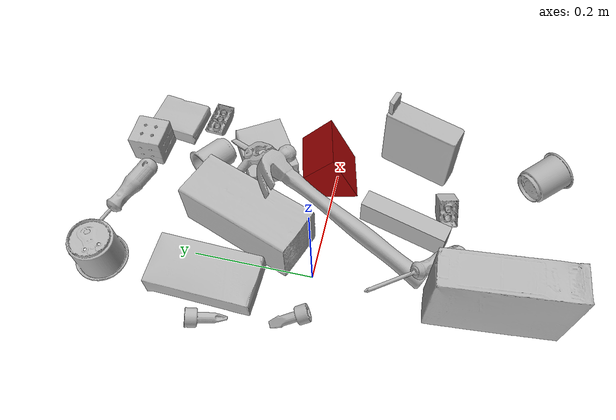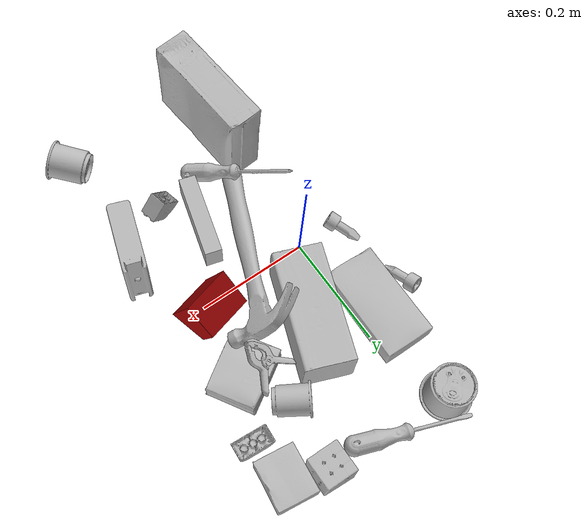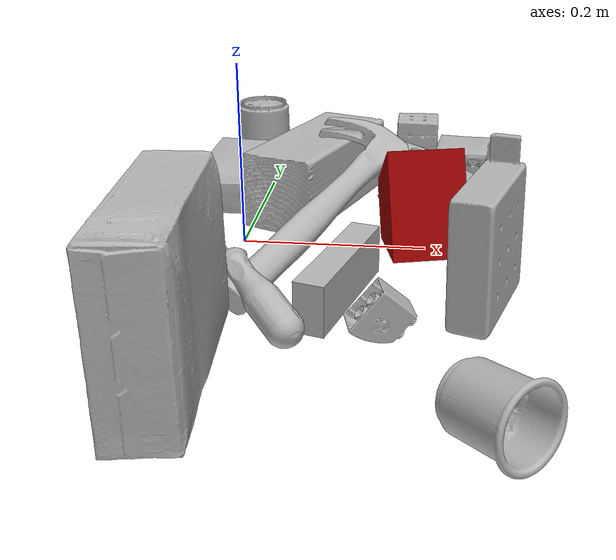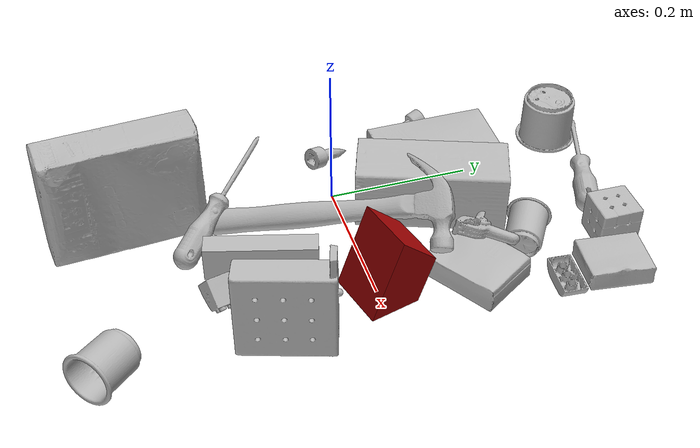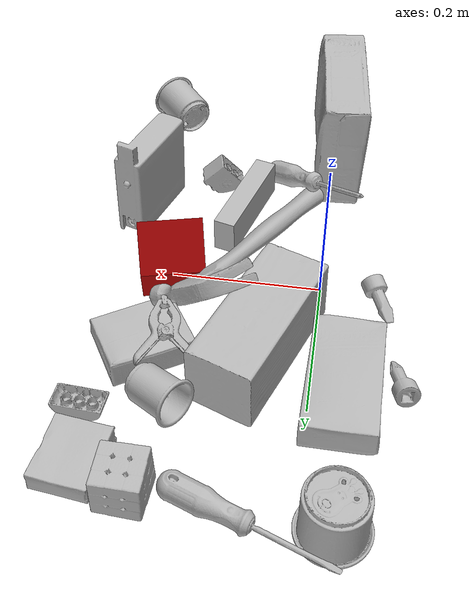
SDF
<sdf version="1.4">
  <world name="default">
    <light name="light1" type="point">
      <pose>0 0 1 0 0 0</pose>
      <diffuse>3 3 3 1</diffuse>
      <specular>3 3 3 1</specular>
    </light>
    <light name="light2" type="point">
      <pose>0 0.5 2 0 0 0</pose>
      <diffuse>1 1 1 1</diffuse>
      <specular>1 1 1 1</specular>
    </light>
    <light name="light3" type="point">
      <pose>0 0.5 2 0 0 0</pose>
      <diffuse>3 3 3 1</diffuse>
      <specular>3 3 3 1</specular>
    </light>
    <scene>
      <ambient>0.7 0.7 0.7</ambient>
    </scene>
    <model name="box21">
      <link name="link_box21">
        <collision name="default">
          <geometry>
            <mesh>
              <uri>model://cracker_box/collision_meshes/collision.obj</uri>
              <scale>1.0 1.0 1.0</scale>
            </mesh>
          </geometry>
          <surface>
            <friction>
              <ode>
                <mu>0.5</mu>
                <mu2>0.5</mu2>
              </ode>
            </friction>
          <contact>
        <ode>
            <max_vel>0</max_vel>
            <min_depth>0.0001</min_depth>
            <kp>1e8</kp>
        </ode>
    </contact></surface>
        </collision>
        <visual name="default">
          <geometry>
            <mesh>
              <uri>model://cracker_box/visual_meshes/visual.dae</uri>
              <scale>1.0 1.0 1.0</scale>
            </mesh>
          </geometry>
        </visual>
        <inertial>
          <mass>1.1849639415740967</mass>
          <pose>0.0009464144241064787 0.0002543424488976598 -0.0017029534792527556 -0.0003162077682631379 -0.011106487737543453 0.002546794536785776</pose>
          <inertia>
            <ixx>0.0030140192</ixx>
            <iyy>0.004976738</iyy>
            <izz>0.007102261</izz>
            <ixy>0</ixy>
            <ixz>0</ixz>
            <iyz>0</iyz>
          </inertia>
        </inertial>
      </link>
      <pose>-0.0013829253148287535 -0.28669631481170654 0.08175766468048096 1.5452335435537305 0.009040302598598558 1.6646765800386187</pose>
    </model>
    <model name="box22">
      <link name="link_box22">
        <collision name="default">
          <geometry>
            <mesh>
              <uri>model://rubiks_cube/collision_meshes/collision.obj</uri>
              <scale>1.0 1.0 1.0</scale>
            </mesh>
          </geometry>
          <surface>
            <friction>
              <ode>
                <mu>0.5</mu>
                <mu2>0.5</mu2>
              </ode>
            </friction>
          <contact>
        <ode>
            <max_vel>0</max_vel>
            <min_depth>0.0001</min_depth>
            <kp>1e8</kp>
        </ode>
    </contact></surface>
        </collision>
        <visual name="default">
          <geometry>
            <mesh>
              <uri>model://rubiks_cube/visual_meshes/visual.dae</uri>
              <scale>1.0 1.0 1.0</scale>
            </mesh>
          </geometry>
        </visual>
        <inertial>
          <mass>0.10796652734279633</mass>
          <pose>2.6721041649580002e-05 5.2569666877388954e-05 -7.264316082000732e-06 -0.054672548620525036 -0.09813983330627576 -0.03445544186372042</pose>
          <inertia>
            <ixx>5.965876e-05</ixx>
            <iyy>5.9380527e-05</iyy>
            <izz>6.0153117e-05</izz>
            <ixy>0</ixy>
            <ixz>0</ixz>
            <iyz>0</iyz>
          </inertia>
        </inertial>
      </link>
      <pose>0.18712276220321655 0.33904731273651123 0.028679000213742256 -1.700980226708567e-06 5.299135681385515e-07 1.5476109186768927</pose>
    </model>
    <model name="box23">
      <link name="link_box23">
        <collision name="default">
          <geometry>
            <mesh>
              <uri>model://sugar_box/collision_meshes/collision.obj</uri>
              <scale>1.0 1.0 1.0</scale>
            </mesh>
          </geometry>
          <surface>
            <friction>
              <ode>
                <mu>0.5</mu>
                <mu2>0.5</mu2>
              </ode>
            </friction>
          <contact>
        <ode>
            <max_vel>0</max_vel>
            <min_depth>0.0001</min_depth>
            <kp>1e8</kp>
        </ode>
    </contact></surface>
        </collision>
        <visual name="default">
          <geometry>
            <mesh>
              <uri>model://sugar_box/visual_meshes/visual.dae</uri>
              <scale>1.0 1.0 1.0</scale>
            </mesh>
          </geometry>
        </visual>
        <inertial>
          <mass>0.8519012928009033</mass>
          <pose>0.0010343727190047503 3.8491099985549226e-05 -0.0003636480832938105 -0.00040462606756407727 0.0010506635218583888 0.002615378789044619</pose>
          <inertia>
            <ixx>0.00070980185</ixx>
            <iyy>0.0022942254</iyy>
            <izz>0.0027464617</izz>
            <ixy>0</ixy>
            <ixz>0</ixz>
            <iyz>0</iyz>
          </inertia>
        </inertial>
      </link>
      <pose>-0.040252070873975754 0.16602133214473724 0.022798629477620125 0.000746623794562726 -0.023427431929300708 1.540475943780164</pose>
    </model>
    <model name="cup1">
      <link name="link_cup1">
        <collision name="default">
          <geometry>
            <mesh>
              <uri>model://b_cups/collision_meshes/collision.obj</uri>
              <scale>1.0 1.0 1.0</scale>
            </mesh>
          </geometry>
          <surface>
            <friction>
              <ode>
                <mu>0.5</mu>
                <mu2>0.5</mu2>
              </ode>
            </friction>
          <contact>
        <ode>
            <max_vel>0</max_vel>
            <min_depth>0.0001</min_depth>
            <kp>1e8</kp>
        </ode>
    </contact></surface>
        </collision>
        <visual name="default">
          <geometry>
            <mesh>
              <uri>model://b_cups/visual_meshes/visual.dae</uri>
              <scale>1.0 1.0 1.0</scale>
            </mesh>
          </geometry>
        </visual>
        <inertial>
          <mass>0.025879299268126488</mass>
          <pose>0.0005181999877095222 0.0018058597343042493 -0.0013381816679611802 0.11356295314662153 0.03872538879904025 -0.34569789869984097</pose>
          <inertia>
            <ixx>1.6939814e-05</ixx>
            <iyy>1.6618207e-05</iyy>
            <izz>1.4254532e-05</izz>
            <ixy>0</ixy>
            <ixz>0</ixz>
            <iyz>0</iyz>
          </inertia>
        </inertial>
      </link>
      <pose>0.1747145652770996 0.21789894998073578 0.027720125392079353 -1.4777128537298199 -0.09238007699395491 0.9950606389758273</pose>
    </model>
    <model name="cup2">
      <link name="link_cup2">
        <collision name="default">
          <geometry>
            <mesh>
              <uri>model://g_cups/collision_meshes/collision.obj</uri>
              <scale>1.0 1.0 1.0</scale>
            </mesh>
          </geometry>
          <surface>
            <friction>
              <ode>
                <mu>0.5</mu>
                <mu2>0.5</mu2>
              </ode>
            </friction>
          <contact>
        <ode>
            <max_vel>0</max_vel>
            <min_depth>0.0001</min_depth>
            <kp>1e8</kp>
        </ode>
    </contact></surface>
        </collision>
        <visual name="default">
          <geometry>
            <mesh>
              <uri>model://g_cups/visual_meshes/visual.dae</uri>
              <scale>1.0 1.0 1.0</scale>
            </mesh>
          </geometry>
        </visual>
        <inertial>
          <mass>0.06683293730020523</mass>
          <pose>-0.0007946278783492744 -4.206685844110325e-05 -0.002132937777787447 -0.21382591566164685 -0.31410327542238353 0.3112138520870617</pose>
          <inertia>
            <ixx>7.8009005e-05</ixx>
            <iyy>7.7743636e-05</iyy>
            <izz>8.080389e-05</izz>
            <ixy>0</ixy>
            <ixz>0</ixz>
            <iyz>0</iyz>
          </inertia>
        </inertial>
      </link>
      <pose>-0.0409293994307518 0.34891781210899353 0.03711601346731186 3.1415921687657717 1.6136544716177917e-09 2.35334756774974</pose>
    </model>
    <model name="box11">
      <link name="link_box11">
        <collision name="default">
          <geometry>
            <mesh>
              <uri>model://wood_block/collision_meshes/collision.obj</uri>
              <scale>1.0 1.0 1.0</scale>
            </mesh>
          </geometry>
          <surface>
            <friction>
              <ode>
                <mu>0.5</mu>
                <mu2>0.5</mu2>
              </ode>
            </friction>
          <contact>
        <ode>
            <max_vel>0</max_vel>
            <min_depth>0.0001</min_depth>
            <kp>1e8</kp>
        </ode>
    </contact></surface>
        </collision>
        <visual name="default">
          <geometry>
            <mesh>
              <uri>model://wood_block/visual_meshes/visual.dae</uri>
              <scale>1.0 1.0 1.0</scale>
            </mesh>
          </geometry>
        </visual>
        <inertial>
          <mass>0.9227498173713684</mass>
          <pose>-5.813315056002466e-06 -0.0005708094104193151 0.0002640858292579651 -0.05221074847543751 -0.005192695234575722 -0.00686137748598008</pose>
          <inertia>
            <ixx>0.001234779</ixx>
            <iyy>0.0039006667</iyy>
            <izz>0.0038860766</izz>
            <ixy>0</ixy>
            <ixz>0</ixz>
            <iyz>0</iyz>
          </inertia>
        </inertial>
      </link>
      <pose>0.06678242981433868 0.12258604913949966 0.045616813004016876 3.1413967631917767 -0.005996273059489422 -1.930140081088456</pose>
    </model>
    <model name="box12">
      <link name="link_box12">
        <collision name="default">
          <geometry>
            <mesh>
              <uri>model://pudding_box/collision_meshes/collision.obj</uri>
              <scale>1.0 1.0 1.0</scale>
            </mesh>
          </geometry>
          <surface>
            <friction>
              <ode>
                <mu>0.5</mu>
                <mu2>0.5</mu2>
              </ode>
            </friction>
          <contact>
        <ode>
            <max_vel>0</max_vel>
            <min_depth>0.0001</min_depth>
            <kp>1e8</kp>
        </ode>
    </contact></surface>
        </collision>
        <visual name="default">
          <geometry>
            <mesh>
              <uri>model://pudding_box/visual_meshes/visual.dae</uri>
              <scale>1.0 1.0 1.0</scale>
            </mesh>
          </geometry>
        </visual>
        <inertial>
          <mass>0.23326139152050018</mass>
          <pose>0.0004894821904599667 0.0008067885646596551 -0.0005188827635720372 0.0052131032034861725 -0.006603797335681708 0.02007982515858456</pose>
          <inertia>
            <ixx>0.00026369</ixx>
            <iyy>0.00017741251</iyy>
            <izz>0.00038940719</izz>
            <ixy>0</ixy>
            <ixz>0</ixz>
            <iyz>0</iyz>
          </inertia>
        </inertial>
      </link>
      <pose>0.21051816642284393 0.13356555998325348 0.018660737201571465 3.1339790339077176 -0.026963237295277644 2.1310259336591235</pose>
    </model>
    <model name="box13">
      <link name="link_box13">
        <collision name="default">
          <geometry>
            <mesh>
              <uri>model://gelatin_box/collision_meshes/collision.obj</uri>
              <scale>1.0 1.0 1.0</scale>
            </mesh>
          </geometry>
          <surface>
            <friction>
              <ode>
                <mu>0.5</mu>
                <mu2>0.5</mu2>
              </ode>
            </friction>
          <contact>
        <ode>
            <max_vel>0</max_vel>
            <min_depth>0.0001</min_depth>
            <kp>1e8</kp>
        </ode>
    </contact></surface>
        </collision>
        <visual name="default">
          <geometry>
            <mesh>
              <uri>model://gelatin_box/visual_meshes/visual.dae</uri>
              <scale>1.0 1.0 1.0</scale>
            </mesh>
          </geometry>
        </visual>
        <inertial>
          <mass>0.0997389405965805</mass>
          <pose>0.0004319618456065655 0.00011156871187267825 -0.0003640321083366871 -0.001050372080915675 -0.004755817759010177 0.0164405576084854</pose>
          <inertia>
            <ixx>7.040755e-05</ixx>
            <iyy>5.0291743e-05</iyy>
            <izz>0.000107175976</izz>
            <ixy>0</ixy>
            <ixz>0</ixz>
            <iyz>0</iyz>
          </inertia>
        </inertial>
      </link>
      <pose>0.25203511118888855 0.3102701008319855 0.015168312937021255 0.005597502294113328 -0.00730457825350332 -0.13241546451173203</pose>
    </model>
    <model name="box14">
      <link name="link_box14">
        <collision name="default">
          <geometry>
            <mesh>
              <uri>model://jenga/collision_meshes/collision.obj</uri>
              <scale>1.0 1.0 1.0</scale>
            </mesh>
          </geometry>
          <surface>
            <friction>
              <ode>
                <mu>0.5</mu>
                <mu2>0.5</mu2>
              </ode>
            </friction>
          <contact>
        <ode>
            <max_vel>0</max_vel>
            <min_depth>0.0001</min_depth>
            <kp>1e8</kp>
        </ode>
    </contact></surface>
        </collision>
        <visual name="default">
          <geometry>
            <mesh>
              <uri>model://jenga/visual_meshes/visual.dae</uri>
              <scale>1.0 1.0 1.0</scale>
            </mesh>
          </geometry>
        </visual>
        <inertial>
          <mass>0.23366476595401764</mass>
          <pose>-2.502855807051674e-07 -0.0001025000965455547 -4.092339804628864e-05 0.0 -7.34215461761844e-07 0.0</pose>
          <inertia>
            <ixx>6.466071e-05</ixx>
            <iyy>0.0004381392</iyy>
            <izz>0.00046775083</izz>
            <ixy>0</ixy>
            <ixz>0</ixz>
            <iyz>0</iyz>
          </inertia>
        </inertial>
      </link>
      <pose>0.11923666298389435 -0.13108938932418823 0.02470194734632969 1.5774972008124768 -1.0935362050226243e-07 1.29965976548554</pose>
    </model>
    <model name="cup15">
      <link name="link_cup15">
        <collision name="default">
          <geometry>
            <mesh>
              <uri>model://d_cups/collision_meshes/collision.obj</uri>
              <scale>1.0 1.0 1.0</scale>
            </mesh>
          </geometry>
          <surface>
            <friction>
              <ode>
                <mu>0.5</mu>
                <mu2>0.5</mu2>
              </ode>
            </friction>
          <contact>
        <ode>
            <max_vel>0</max_vel>
            <min_depth>0.0001</min_depth>
            <kp>1e8</kp>
        </ode>
    </contact></surface>
        </collision>
        <visual name="default">
          <geometry>
            <mesh>
              <uri>model://d_cups/visual_meshes/visual.dae</uri>
              <scale>1.0 1.0 1.0</scale>
            </mesh>
          </geometry>
        </visual>
        <inertial>
          <mass>0.05354860797524452</mass>
          <pose>0.000806806143373251 0.001911740517243743 -0.002266649389639497 0.240133395025133 -0.24708811164710584 0.5942101592185234</pose>
          <inertia>
            <ixx>4.4832785e-05</ixx>
            <iyy>4.470303e-05</iyy>
            <izz>4.0581297e-05</izz>
            <ixy>0</ixy>
            <ixz>0</ixz>
            <iyz>0</iyz>
          </inertia>
        </inertial>
      </link>
      <pose>0.2513510286808014 -0.3514857888221741 0.0323602519929409 1.3355218517900695 1.1371312919253567 0.5357211282239907</pose>
    </model>
    <model name="toy1">
      <link name="link_toy1">
        <collision name="default">
          <geometry>
            <mesh>
              <uri>model://d_toy_airplane/collision_meshes/collision.obj</uri>
              <scale>1.0 1.0 1.0</scale>
            </mesh>
          </geometry>
          <surface>
            <friction>
              <ode>
                <mu>0.5</mu>
                <mu2>0.5</mu2>
              </ode>
            </friction>
          <contact>
        <ode>
            <max_vel>0</max_vel>
            <min_depth>0.0001</min_depth>
            <kp>1e8</kp>
        </ode>
    </contact></surface>
        </collision>
        <visual name="default">
          <geometry>
            <mesh>
              <uri>model://d_toy_airplane/visual_meshes/visual.dae</uri>
              <scale>1.0 1.0 1.0</scale>
            </mesh>
          </geometry>
        </visual>
        <inertial>
          <mass>0.01055214088410139</mass>
          <pose>9.410294296685606e-05 -5.809328649775125e-05 -0.011728094890713692 0.00026701540047293157 0.004678982739479609 0.5194739606880012</pose>
          <inertia>
            <ixx>3.1633276e-06</ixx>
            <iyy>3.1657132e-06</iyy>
            <izz>9.55029e-07</izz>
            <ixy>0</ixy>
            <ixz>0</ixz>
            <iyz>0</iyz>
          </inertia>
        </inertial>
      </link>
      <pose>-0.10773111879825592 0.1451178342103958 0.011275384575128555 2.3272739860876825 1.24268339337223 1.0101296241658337</pose>
    </model>
    <model name="toy2">
      <link name="link_toy2">
        <collision name="default">
          <geometry>
            <mesh>
              <uri>model://d_lego_duplo/collision_meshes/collision.obj</uri>
              <scale>1.0 1.0 1.0</scale>
            </mesh>
          </geometry>
          <surface>
            <friction>
              <ode>
                <mu>0.5</mu>
                <mu2>0.5</mu2>
              </ode>
            </friction>
          <contact>
        <ode>
            <max_vel>0</max_vel>
            <min_depth>0.0001</min_depth>
            <kp>1e8</kp>
        </ode>
    </contact></surface>
        </collision>
        <visual name="default">
          <geometry>
            <mesh>
              <uri>model://d_lego_duplo/visual_meshes/visual.dae</uri>
              <scale>1.0 1.0 1.0</scale>
            </mesh>
          </geometry>
        </visual>
        <inertial>
          <mass>0.039816875010728836</mass>
          <pose>0.0028305640444159508 0.00016366131603717804 0.000858980929479003 0.08010950238605453 -0.3835521959243733 0.0010296761363168562</pose>
          <inertia>
            <ixx>7.70796e-06</ixx>
            <iyy>1.0939688e-05</iyy>
            <izz>1.0549791e-05</izz>
            <ixy>0</ixy>
            <ixz>0</ixz>
            <iyz>0</iyz>
          </inertia>
        </inertial>
      </link>
      <pose>0.16343200206756592 -0.19670163094997406 0.01791154034435749 -3.137547481107204 -0.854040218979172 0.23795269255992307</pose>
    </model>
    <model name="toy3">
      <link name="link_toy3">
        <collision name="default">
          <geometry>
            <mesh>
              <uri>model://nine_hole_peg_test/collision_meshes/collision.obj</uri>
              <scale>1.0 1.0 1.0</scale>
            </mesh>
          </geometry>
          <surface>
            <friction>
              <ode>
                <mu>0.5</mu>
                <mu2>0.5</mu2>
              </ode>
            </friction>
          <contact>
        <ode>
            <max_vel>0</max_vel>
            <min_depth>0.0001</min_depth>
            <kp>1e8</kp>
        </ode>
    </contact></surface>
        </collision>
        <visual name="default">
          <geometry>
            <mesh>
              <uri>model://nine_hole_peg_test/visual_meshes/visual.dae</uri>
              <scale>1.0 1.0 1.0</scale>
            </mesh>
          </geometry>
        </visual>
        <inertial>
          <mass>0.7048692107200623</mass>
          <pose>-0.0046173869632184505 -0.009647614322602749 2.6460689696250483e-05 -0.0014666794682547425 0.0007194190753660851 -0.6342416580414534</pose>
          <inertia>
            <ixx>0.0011021789</ixx>
            <iyy>0.0010290928</iyy>
            <izz>0.0019313421</izz>
            <ixy>0</ixy>
            <ixz>0</ixz>
            <iyz>0</iyz>
          </inertia>
        </inertial>
      </link>
      <pose>0.2575593590736389 -0.12823818624019623 0.07397211343050003 1.5550013024335216 -0.009795052344105035 1.2549976783058752</pose>
    </model>
    <model name="toy4">
      <link name="link_toy4">
        <collision name="default">
          <geometry>
            <mesh>
              <uri>model://a_lego_duplo/collision_meshes/collision.obj</uri>
              <scale>1.0 1.0 1.0</scale>
            </mesh>
          </geometry>
          <surface>
            <friction>
              <ode>
                <mu>0.5</mu>
                <mu2>0.5</mu2>
              </ode>
            </friction>
          <contact>
        <ode>
            <max_vel>0</max_vel>
            <min_depth>0.0001</min_depth>
            <kp>1e8</kp>
        </ode>
    </contact></surface>
        </collision>
        <visual name="default">
          <geometry>
            <mesh>
              <uri>model://a_lego_duplo/visual_meshes/visual.dae</uri>
              <scale>1.0 1.0 1.0</scale>
            </mesh>
          </geometry>
        </visual>
        <inertial>
          <mass>0.021006127819418907</mass>
          <pose>-0.00011337678006384522 0.00018517556600272655 0.0003692602913361043 -0.014116980161978756 -0.00012565077681184441 6.142327078429463e-05</pose>
          <inertia>
            <ixx>2.6931523e-06</ixx>
            <iyy>6.033251e-06</iyy>
            <izz>7.473524e-06</izz>
            <ixy>0</ixy>
            <ixz>0</ixz>
            <iyz>0</iyz>
          </inertia>
        </inertial>
      </link>
      <pose>0.2634427547454834 0.23746417462825775 0.012124794535338879 -3.141281913051534 -0.015583305963309431 3.0594552632407055</pose>
    </model>
    <model name="toy5">
      <link name="link_toy5">
        <collision name="default">
          <geometry>
            <mesh>
              <uri>model://e_toy_airplane/collision_meshes/collision.obj</uri>
              <scale>1.0 1.0 1.0</scale>
            </mesh>
          </geometry>
          <surface>
            <friction>
              <ode>
                <mu>0.5</mu>
                <mu2>0.5</mu2>
              </ode>
            </friction>
          <contact>
        <ode>
            <max_vel>0</max_vel>
            <min_depth>0.0001</min_depth>
            <kp>1e8</kp>
        </ode>
    </contact></surface>
        </collision>
        <visual name="default">
          <geometry>
            <mesh>
              <uri>model://e_toy_airplane/visual_meshes/visual.dae</uri>
              <scale>1.0 1.0 1.0</scale>
            </mesh>
          </geometry>
        </visual>
        <inertial>
          <mass>0.02451101876795292</mass>
          <pose>0.00011740468471543863 -2.248291639261879e-05 -0.011187203228473663 0.00551850103187323 0.009228285956806933 0.150416364683818</pose>
          <inertia>
            <ixx>7.481042e-06</ixx>
            <iyy>7.4045165e-06</iyy>
            <izz>2.2483475e-06</izz>
            <ixy>0</ixy>
            <ixz>0</ixz>
            <iyz>0</iyz>
          </inertia>
        </inertial>
      </link>
      <pose>-0.08102981001138687 0.018237099051475525 0.010808727703988552 -2.14516581223671 1.102817543197112 -0.0649511673990512</pose>
    </model>
    <model name="toy6">
      <link name="link_toy6">
        <collision name="default">
          <geometry>
            <mesh>
              <uri>model://prism/collision_meshes/collision.obj</uri>
              <scale>1.0 1.0 1.0</scale>
            </mesh>
          </geometry>
          <surface>
            <friction>
              <ode>
                <mu>0.5</mu>
                <mu2>0.5</mu2>
              </ode>
            </friction>
          <contact>
        <ode>
            <max_vel>0</max_vel>
            <min_depth>0.0001</min_depth>
            <kp>1e8</kp>
        </ode>
    </contact></surface>
        </collision>
        <visual name="default">
          <geometry>
            <mesh>
              <uri>model://prism/visual_meshes/visual.dae</uri>
              <scale>1.0 1.0 1.0</scale>
            </mesh>
          </geometry>
        </visual>
        <inertial>
          <mass>0.639074981212616</mass>
          <pose>-9.85359656624496e-05 -4.96157269935793e-07 -0.003386910306289792 0.0 0.006559180766136186 0.0</pose>
          <inertia>
            <ixx>0.0005767573</ixx>
            <iyy>0.0006970186</iyy>
            <izz>0.0008537644</izz>
            <ixy>0</ixy>
            <ixz>0</ixz>
            <iyz>0</iyz>
          </inertia>
        </inertial>
      </link>
      <pose>0.19598205387592316 0.018318235874176025 0.04270410165190697 -3.141592106873319 -1.194138099811655 1.8212109792471367</pose>
    </model>
    <model name="hardware1">
      <link name="link_hardware1">
        <collision name="default">
          <geometry>
            <mesh>
              <uri>model://medium_clamp/collision_meshes/collision.obj</uri>
              <scale>1.0 1.0 1.0</scale>
            </mesh>
          </geometry>
          <surface>
            <friction>
              <ode>
                <mu>0.5</mu>
                <mu2>0.5</mu2>
              </ode>
            </friction>
          <contact>
        <ode>
            <max_vel>0</max_vel>
            <min_depth>0.0001</min_depth>
            <kp>1e8</kp>
        </ode>
    </contact></surface>
        </collision>
        <visual name="default">
          <geometry>
            <mesh>
              <uri>model://medium_clamp/visual_meshes/visual.dae</uri>
              <scale>1.0 1.0 1.0</scale>
            </mesh>
          </geometry>
        </visual>
        <inertial>
          <mass>0.01437164656817913</mass>
          <pose>0.005390993785113096 0.00039532355731353164 -0.0001222158025484532 -0.001226922255807767 0.0025845058861846287 0.038207728721457376</pose>
          <inertia>
            <ixx>3.9153533e-06</ixx>
            <iyy>5.697947e-06</iyy>
            <izz>8.776544e-06</izz>
            <ixy>0</ixy>
            <ixz>0</ixz>
            <iyz>0</iyz>
          </inertia>
        </inertial>
      </link>
      <pose>0.17864279448986053 0.14952796697616577 0.052395567297935486 -3.0109307262667455 -0.4276493784909878 -1.348836567501541</pose>
    </model>
    <model name="hardware2">
      <link name="link_hardware2">
        <collision name="default">
          <geometry>
            <mesh>
              <uri>model://hammer/collision_meshes/collision.obj</uri>
              <scale>1.0 1.0 1.0</scale>
            </mesh>
          </geometry>
          <surface>
            <friction>
              <ode>
                <mu>0.5</mu>
                <mu2>0.5</mu2>
              </ode>
            </friction>
          <contact>
        <ode>
            <max_vel>0</max_vel>
            <min_depth>0.0001</min_depth>
            <kp>1e8</kp>
        </ode>
    </contact></surface>
        </collision>
        <visual name="default">
          <geometry>
            <mesh>
              <uri>model://hammer/visual_meshes/visual.dae</uri>
              <scale>1.0 1.0 1.0</scale>
            </mesh>
          </geometry>
        </visual>
        <inertial>
          <mass>0.29233166575431824</mass>
          <pose>0.009415771812200546 -0.011892357841134071 -0.0001235063245985657 0.02315535385536088 -0.004792164028838156 -0.01276032390705471</pose>
          <inertia>
            <ixx>0.0001252207</ixx>
            <iyy>0.003393116</iyy>
            <izz>0.0034903311</izz>
            <ixy>0</ixy>
            <ixz>0</ixz>
            <iyz>0</iyz>
          </inertia>
        </inertial>
      </link>
      <pose>0.08741109818220139 -0.016260182484984398 0.05970684438943863 0.577474220792247 -0.20370090262808344 1.1422140518258943</pose>
    </model>
    <model name="hardware3">
      <link name="link_hardware3">
        <collision name="default">
          <geometry>
            <mesh>
              <uri>model://phillips_screwdriver/collision_meshes/collision.obj</uri>
              <scale>1.0 1.0 1.0</scale>
            </mesh>
          </geometry>
          <surface>
            <friction>
              <ode>
                <mu>0.5</mu>
                <mu2>0.5</mu2>
              </ode>
            </friction>
          <contact>
        <ode>
            <max_vel>0</max_vel>
            <min_depth>0.0001</min_depth>
            <kp>1e8</kp>
        </ode>
    </contact></surface>
        </collision>
        <visual name="default">
          <geometry>
            <mesh>
              <uri>model://phillips_screwdriver/visual_meshes/visual.dae</uri>
              <scale>1.0 1.0 1.0</scale>
            </mesh>
          </geometry>
        </visual>
        <inertial>
          <mass>0.11685379594564438</mass>
          <pose>-0.04777182638645172 0.0010362302418798208 -0.0004555549821816385 -0.15721778382646787 0.005850995328295584 -0.002156740385256481</pose>
          <inertia>
            <ixx>1.3729124e-05</ixx>
            <iyy>0.00017213916</iyy>
            <izz>0.00017228544</izz>
            <ixy>0</ixy>
            <ixz>0</ixz>
            <iyz>0</iyz>
          </inertia>
        </inertial>
      </link>
      <pose>0.025177879258990288 -0.16487228870391846 0.04997582733631134 2.194300034540844 -0.3954424783501572 2.327036723198901</pose>
    </model>
    <model name="hardware4">
      <link name="link_hardware4">
        <collision name="default">
          <geometry>
            <mesh>
              <uri>model://flat_screwdriver/collision_meshes/collision.obj</uri>
              <scale>1.0 1.0 1.0</scale>
            </mesh>
          </geometry>
          <surface>
            <friction>
              <ode>
                <mu>0.5</mu>
                <mu2>0.5</mu2>
              </ode>
            </friction>
          <contact>
        <ode>
            <max_vel>0</max_vel>
            <min_depth>0.0001</min_depth>
            <kp>1e8</kp>
        </ode>
    </contact></surface>
        </collision>
        <visual name="default">
          <geometry>
            <mesh>
              <uri>model://flat_screwdriver/visual_meshes/visual.dae</uri>
              <scale>1.0 1.0 1.0</scale>
            </mesh>
          </geometry>
        </visual>
        <inertial>
          <mass>0.10915977507829666</mass>
          <pose>-0.0489187091588974 -0.0006576799787580967 -0.000614091579336673 -0.5614402636475724 -0.003233725963840683 0.006982283174401888</pose>
          <inertia>
            <ixx>1.2897148e-05</ixx>
            <iyy>0.0001637322</iyy>
            <izz>0.00016365637</izz>
            <ixy>0</ixy>
            <ixz>0</ixz>
            <iyz>0</iyz>
          </inertia>
        </inertial>
      </link>
      <pose>0.050443604588508606 0.36208808422088623 0.014493189752101898 2.8802417808856506 0.03560324899720794 2.805125334711141</pose>
    </model>
  <physics type="ode">
      <max_contacts>50</max_contacts>
      <ode>
        <solver>
          <type>quick</type>
          <iters>75</iters>
        </solver>
        <constraints>
          <contact_max_correcting_vel>0</contact_max_correcting_vel>
          <contact_surface_layer>0</contact_surface_layer>
        </constraints>
      </ode>
    </physics></world>
</sdf>
